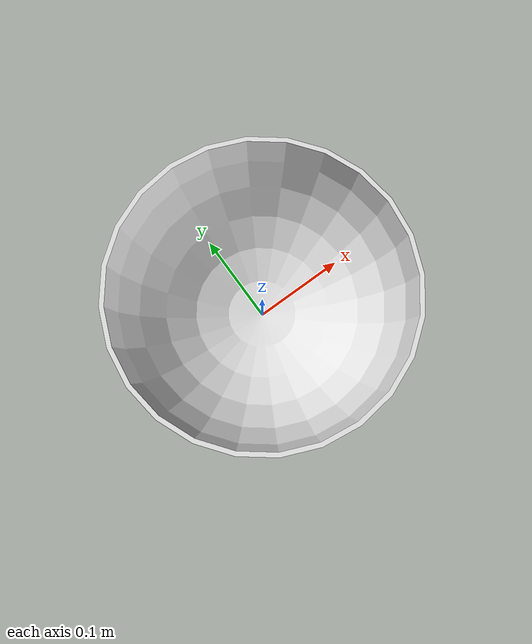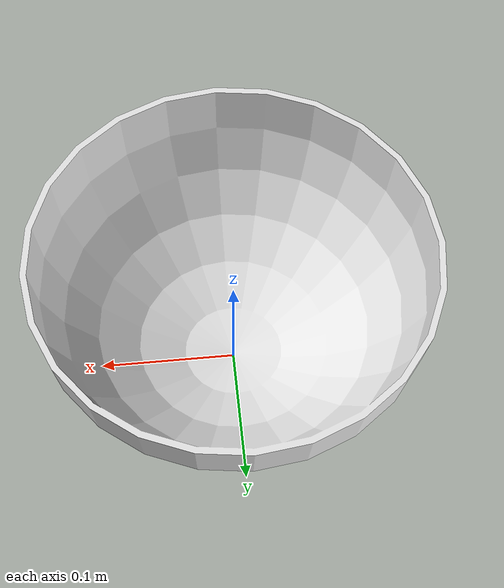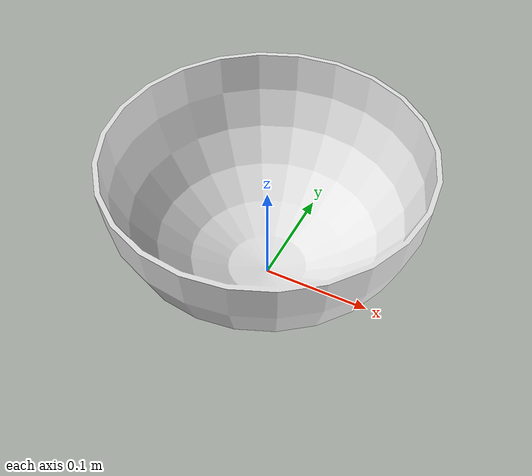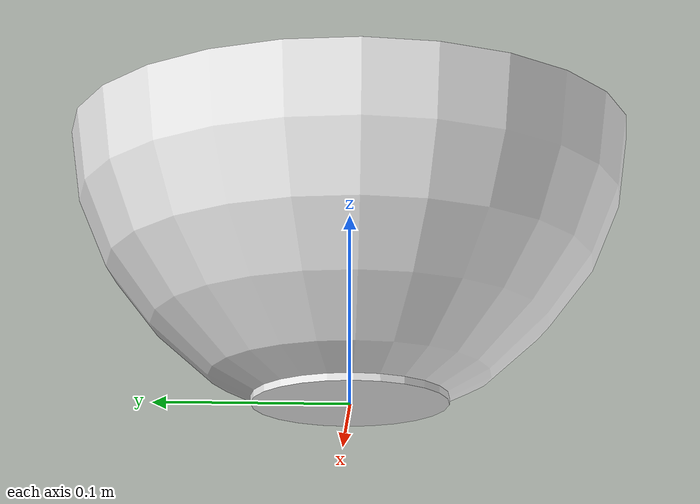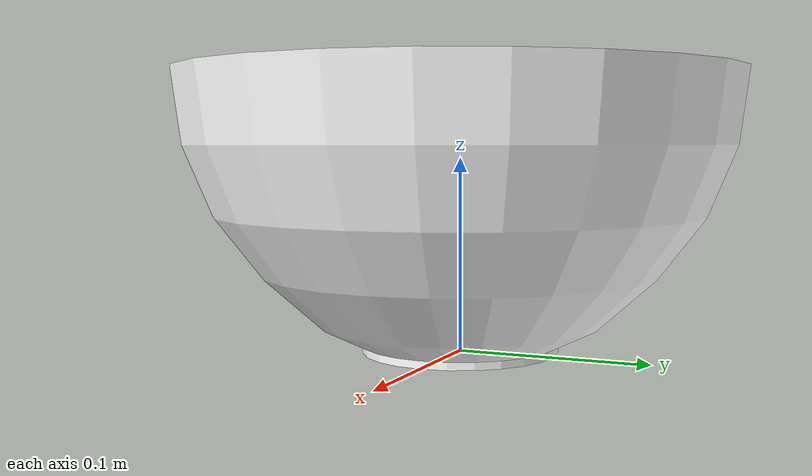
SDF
<?xml version='1.0'?>
<sdf version="1.4">
	<model name="bowl">
		<static>1</static>
		<link name="link">
			<visual name="mesh">
				<geometry>
					<mesh>
						<uri>model://meshes/bowl.dae</uri>
					</mesh>
				</geometry>
			</visual>
			<collision name="collider">
				<pose>0 0 0.072 0 0 0</pose>
				<geometry>
					<cylinder>
						<radius>0.145</radius>
						<length>0.144</length>
					</cylinder>
				</geometry>
			</collision>
		</link>
	</model>
</sdf>
